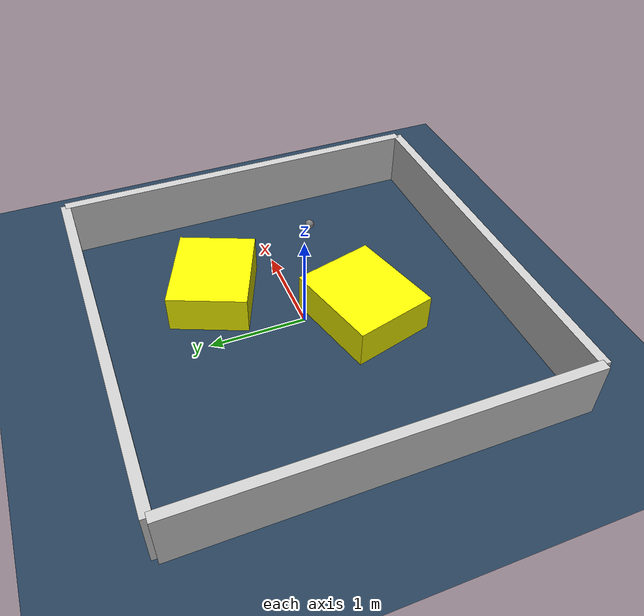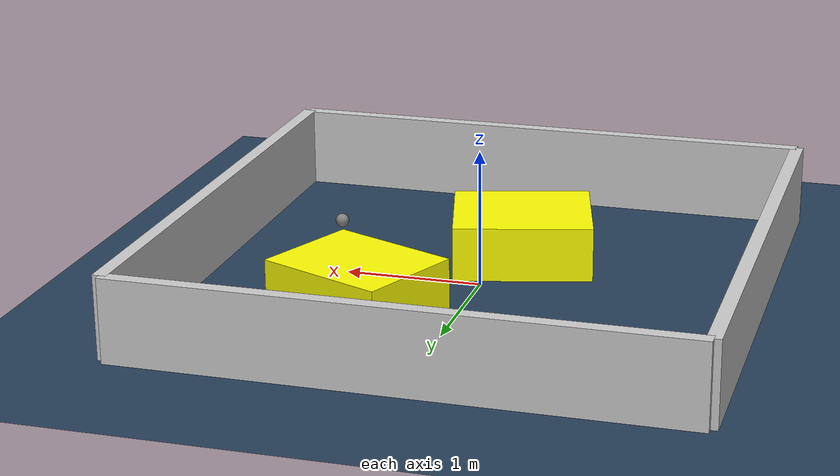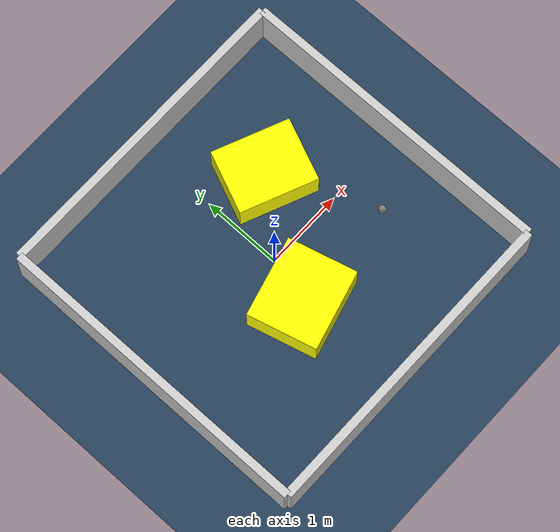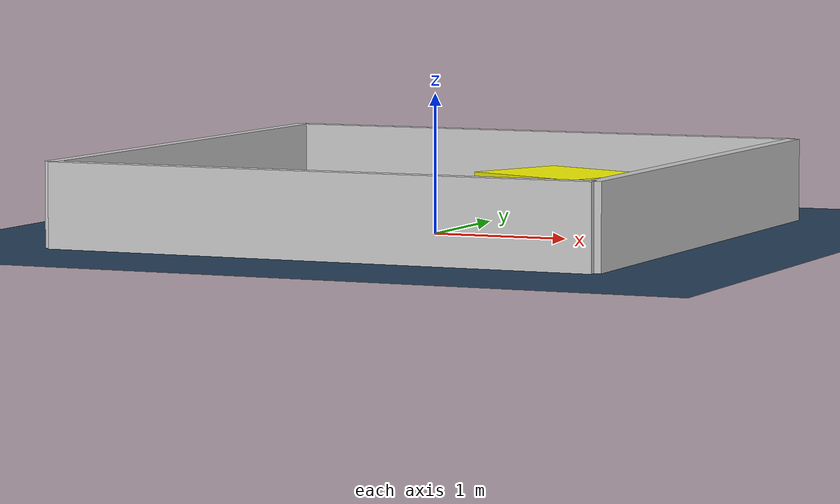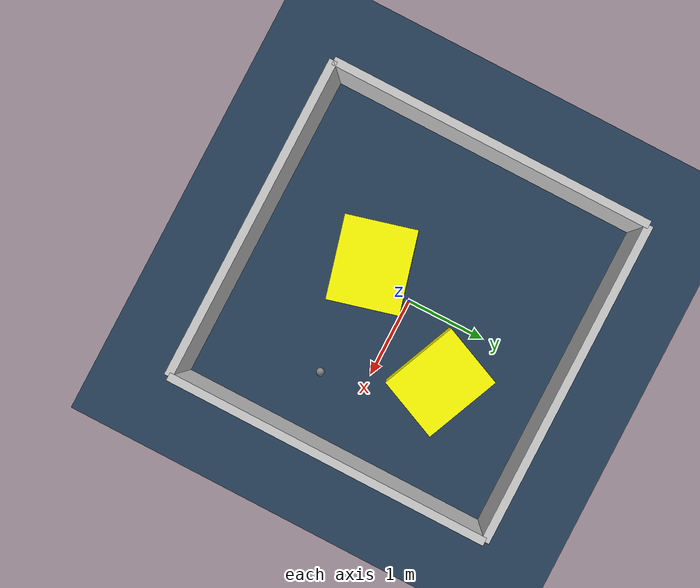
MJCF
<?xml version="1.0" ?>
<mujoco model="generated_environment">
  <option timestep="0.01" integrator="RK4" cone="elliptic"/>
  <default>
    <geom density="1"/>
  </default>
  <asset>
    <texture builtin="gradient" height="3072" rgb1="0.3 0.5 0.7" rgb2="0 0 0" type="skybox" width="512"/>
    <texture builtin="checker" height="300" mark="edge" markrgb="0.8 0.8 0.8" name="groundplane" rgb1="0.2 0.3 0.4" rgb2="0.1 0.2 0.3" type="2d" width="300"/>
    <material name="groundplane" reflectance="0.2" texrepeat="5 5" texture="groundplane" texuniform="true"/>
    <material name="robot" rgba="0.0 1.0 0.0 1"/>
  </asset>
  <worldbody>
    <light dir="0 0 -1" directional="true" pos="0 0 1.5"/>
    <geom condim="4" friction="1.0 0.005 0.001" material="groundplane" name="floor" size="0 0 0.05" type="plane"/>
    <body name="walls">
      <geom name="wall_1" condim="4" pos="-2.0 0.0 0.3" rgba="0.800000011920929 0.800000011920929 0.800000011920929 1.0" size="0.05 2.0 0.3" type="box"/>
      <geom name="wall_2" condim="4" pos="2.0 0.0 0.3" rgba="0.800000011920929 0.800000011920929 0.800000011920929 1.0" size="0.05 2.0 0.3" type="box"/>
      <geom name="wall_3" condim="4" pos="0.0 -2.0 0.3" rgba="0.800000011920929 0.800000011920929 0.800000011920929 1.0" size="2.0 0.05 0.3" type="box"/>
      <geom name="wall_4" condim="4" pos="0.0 2.0 0.3" rgba="0.800000011920929 0.800000011920929 0.800000011920929 1.0" size="2.0 0.05 0.3" type="box"/>
    </body>
    <body name="robot">
      <joint name="joint_x" type="slide" pos="0 0 0" axis="1 0 0"/>
      <joint name="joint_y" type="slide" pos="0 0 0" axis="0 1 0"/>
      <geom name="robot" type="sphere" pos="1.2247291571185324 -0.5387304391816561 0.2" size="0.05" mass="5." friction="1.0 0.005 0.0001" condim="4"/>
      <site name="sensor_ball"/>
    </body>
    <body name="obstacle_1_movable">
      <geom name="obstacle_1_movable" condim="4" pos="0.6676741813246605 0.7567742038601148 0.2" euler="0 0 246.84722028132555" friction="1.0 0.005 0.001" rgba="1 1 0 1" size="0.4028448183874832 0.4914688571507335 0.2" type="box" mass="0.1"/>
      <joint type="free"/>
    </body>
    <body name="obstacle_2_movable">
      <geom name="obstacle_2_movable" condim="4" pos="-0.16986410227580073 -0.56855282518678 0.2" euler="0 0 14.719945191126072" friction="1.0 0.005 0.001" rgba="1 1 0 1" size="0.5066439828394023 0.43602719032721116 0.2" type="box" mass="0.1"/>
      <joint type="free"/>
    </body>
  </worldbody>
  <actuator>
    <motor name="actuator_x" joint="joint_x" gear="1" ctrlrange="-1 1"/>
    <motor name="actuator_y" joint="joint_y" gear="1" ctrlrange="-1 1"/>
  </actuator>
</mujoco>
